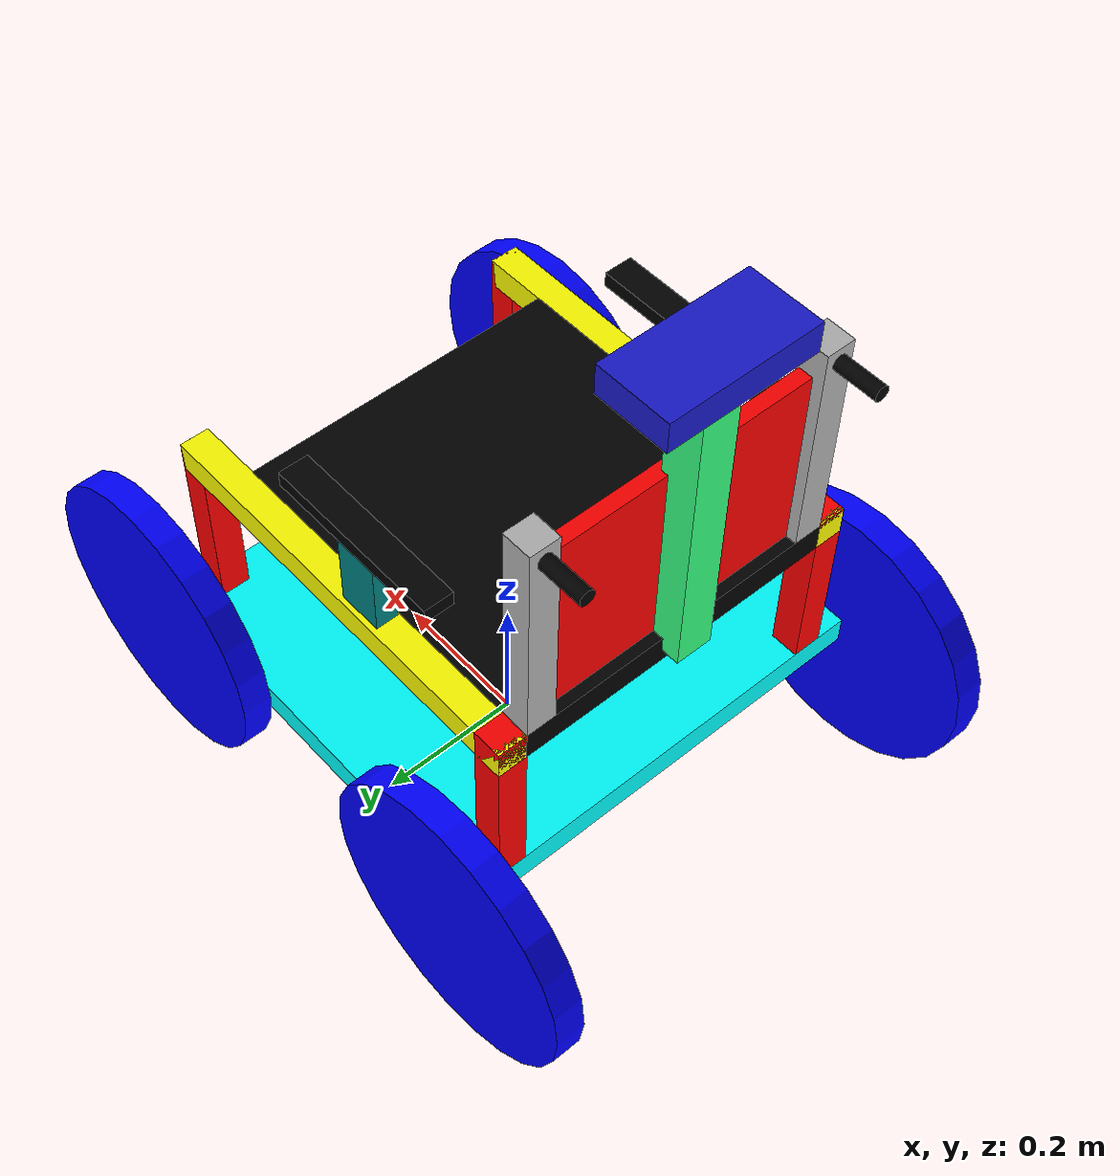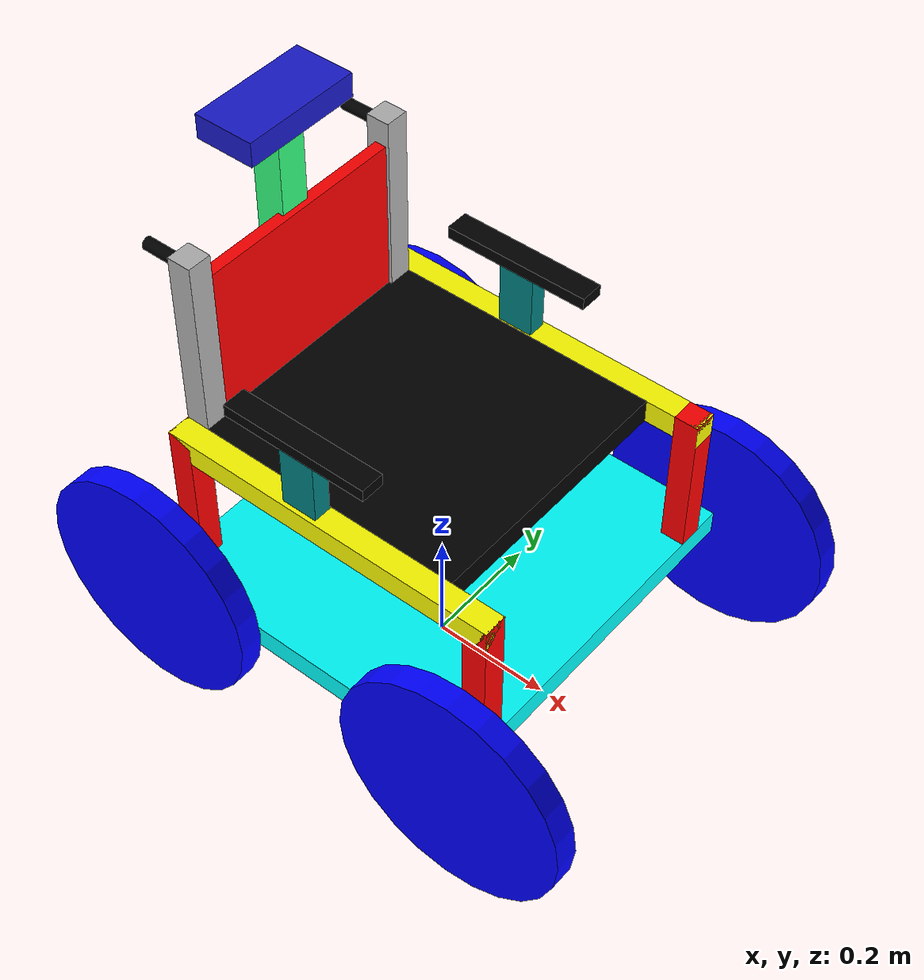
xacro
<?xml version="1.0"?>
<robot xmlns:xacro="http://www.ros.org/wiki/xacro" name="rover">

    <link name="base_link">

        <visual name="">
            <origin xyz="0.0 0.0 0.0" rpy="0.0 0.0 0.0"/>
            <geometry>
                <box size="0.0 0.0 0.0"/>
            </geometry>
            <material name="">
                <color rgba="0.0 1.0 1.0 1.0"/>
                <texture filename=""/>
            </material>
        </visual>

    </link>

    <link name="base_uplayer_link">
        <inertial>
            <origin xyz="0.0 0.0 0.0" rpy="0.0 0.0 0.0"/>
            <mass value="1.0"/>
            <inertia ixx="0.0" ixy="0.0" ixz="0.0" iyy="0.0" iyz="0.0" izz="0.0"/>
        </inertial>
        <visual name="">
            <origin xyz="0.0 0.0 0.0" rpy="0.0 0.0 0.0"/>
            <geometry>
                <box size="0.61 0.58 0.04"/>
            </geometry>
            <material name="">
                <color rgba="0.0 1.0 1.0 1.0"/>
                <texture filename=""/>
            </material>
        </visual>
        <collision>
            <origin xyz="0.0 0.0 0.0" rpy="0.0 0.0 0.0"/>
            <geometry>
                <box size="0.61 0.58 0.04"/>
            </geometry>
        </collision>
    </link>
    <joint name="base_joint" type="fixed">
        <origin xyz="0.0 0.0 0.195" rpy="0.0 0.0 -1.57"/>   <!-- here can control height from z -->
        <parent link="base_link"/>
        <child link="base_uplayer_link"/>
        <!-- here if link can move here choose axis who move around -->
        <axis xyz="0.0 0.0 0.0"/>
    </joint>

    <!-- All Wheel links and joints -->
    <xacro:macro name="wheel" params="name x y">

        <link name="wheel_${name}_link">
        <inertial>
            <origin xyz="0.0 0.0 0.0" rpy="0.0 0.0 0.0"/>
            <mass value="0.5"/>
            <inertia ixx="0.0" ixy="0.0" ixz="0.0" iyy="0.0" iyz="0.0" izz="0.0"/>
        </inertial>
        <visual name="">
            <origin xyz="0.0 0.0 0.0" rpy="0.0 0.0 0.0"/>
            <geometry>
                <cylinder radius="0.195" length="0.04"/>
            </geometry>
            <material name="blue">
                <color rgba="0.0 0.0 1.0 1.0"/>
            </material>
        </visual>
        <collision>
            <origin xyz="0.0 0.0 0.0" rpy="0.0 0.0 0.0"/>
            <geometry>
               <cylinder radius="0.195" length="0.04"/>
            </geometry>
        </collision>
        </link>

        <joint name="wheel_${name}_joint" type="continuous">
            <origin xyz="${x} ${y} 0.0" rpy="0.0 1.57 0.0"/>
            <parent link="base_uplayer_link"/>
            <child link="wheel_${name}_link"/>
            <axis xyz="0.0 0.0 1.0"/>
        </joint>

    </xacro:macro>

    <!-- Back Left wheel create  using xacro macros-->
    <xacro:wheel name="back_left" x="-0.325" y="-0.29" />
    <!-- Back Right wheel create  using xacro macros-->
    <xacro:wheel name="back_right" x="0.325" y="-0.29" />
    <!-- Front Left wheel create  using xacro macros-->
    <xacro:wheel name="front_left" x="-0.325 " y="0.29" />
    <!-- Front Right wheel create  using xacro macros-->
    <xacro:wheel name="front_right" x="0.325 " y="0.29" />

    <!-- All column links and joints -->
    <xacro:macro name="column" params="name x y">

        <link name="column_${name}_link">
            <inertial>
                <origin xyz="0.0 0.0 0.0" rpy="0.0 0.0 0.0"/>
                <mass value="0.02"/>
                <inertia ixx="0.0" ixy="0.0" ixz="0.0" iyy="0.0" iyz="0.0" izz="0.0"/>
            </inertial>
            <visual name="">
                <origin xyz="0.0 0.0 0.0" rpy="0.0 0.0 0.0"/>
                <geometry>
                    <box size="0.04 0.04 0.25"/>
                </geometry>
                <material name="">
                    <color rgba="1.0 0.0 0.0 1.0"/>
                    <texture filename=""/>
                </material>
            </visual>
            <collision>
                <origin xyz="0.0 0.0 0.0" rpy="0.0 0.0 0.0"/>
                <geometry>
                    <box size="0.04 0.04 0.25"/>
                </geometry>
            </collision>
        </link>
        <joint name="column_${name}_joint" type="fixed">
        <!-- here make  x = 0.28 instead of x=0.285 to make column not touch wheel -->
            <origin xyz="${x} ${y} 0.145" rpy="0.0 0.0 0.0"/>
            <parent link="base_uplayer_link"/>
            <child link="column_${name}_link"/>
            <axis xyz="0.0 0.0 0.0"/>
        </joint>

    </xacro:macro>

    <!-- Back Left column create  using xacro macros-->
    <xacro:column name="back_left" x="-0.242" y="-0.27" />
    <!-- Back Right column create  using xacro macros-->
    <xacro:column name="back_right" x="0.242" y="-0.27" />
    <!-- Front Left column create  using xacro macros-->
    <xacro:column name="front_left" x="-0.242" y="0.27" />
    <!-- Front Right column create  using xacro macros-->
    <xacro:column name="front_right" x="0.242" y="0.27" />

    <!-- All Parallel column link and joint -->

    <xacro:macro name="parallelColumn" params="name x">

        <link name="conect_2_${name}_link">
            <inertial>
                <origin xyz="0.0 0.0 0.0" rpy="0.0 0.0 0.0"/>
                <mass value="0.02"/>
                <inertia ixx="0.0" ixy="0.0" ixz="0.0" iyy="0.0" iyz="0.0" izz="0.0"/>
            </inertial>
            <visual name="">
                <origin xyz="0.0 0.0 0.0" rpy="0.0 0.0 0.0"/>
                <geometry>
                    <box size="0.04 0.58 0.04"/>
                </geometry>
                <material name="">
                    <color rgba="1.0 1.0 0.0 1.0"/>
                    <texture filename=""/>
                </material>
            </visual>
            <collision>
                <origin xyz="0.0 0.0 0.0" rpy="0.0 0.0 0.0"/>
                <geometry>
                    <box size="0.04 0.58 0.04"/>
                </geometry>
            </collision>
        </link>
        <joint name="conect_2_${name}_joint" type="fixed">
            <origin xyz=" ${x} 0.0 0.25" rpy="0.0 0.0 0.0"/>
            <parent link="base_uplayer_link"/>
            <child link="conect_2_${name}_link"/>
            <axis xyz="0.0 0.0 0.0"/>
        </joint>
    </xacro:macro>
    <!-- left parallel column create using macros -->
    <xacro:parallelColumn name="left_columns" x="-0.242" />
    <!-- right parallel column create using macros -->
    <xacro:parallelColumn name="right_columns" x="0.242" />

    <!-- create seat link and joint  -->
    <link name="seat_link">
        <inertial>
            <origin xyz="0.0 0.0 0.0" rpy="0.0 0.0 0.0"/>
            <mass value="1.0"/>
            <inertia ixx="0.0" ixy="0.0" ixz="0.0" iyy="0.0" iyz="0.0" izz="0.0"/>
        </inertial>
        <visual name="">
            <origin xyz="0.0 0.0 0.0" rpy="0.0 0.0 0.0"/>
            <geometry>
                <box size="0.445 0.49 0.04"/>
            </geometry>
            <material name="">
                <color rgba="0.0 0.0 0.0 1.0"/>
                <texture filename=""/>
            </material>
        </visual>
        <collision>
            <origin xyz="0.0 0.0 0.0" rpy="0.0 0.0 0.0"/>
            <geometry>
                <box size="0.445 0.49 0.04"/>
            </geometry>
        </collision>
    </link>
    <joint name="seat_joint" type="fixed">
        <origin xyz="0.0 -0.045 0.25" rpy="0.0 0.0 0.0"/>
        <parent link="base_uplayer_link"/>
        <child link="seat_link"/>
        <axis xyz="0.0 0.0 0.0"/>
    </joint>

    <!-- All vertical column for stand  link and joint -->
    <xacro:macro name="carriage_stand" params="name x">

        <link name="carriage_stand_${name}_link">
            <inertial>
                <origin xyz="0.0 0.0 0.0" rpy="0.0 0.0 0.0"/>
                <mass value="0.02"/>
                <inertia ixx="0.0" ixy="0.0" ixz="0.0" iyy="0.0" iyz="0.0" izz="0.0"/>
            </inertial>
            <visual name="">
                <origin xyz="0.0 0.0 0.0" rpy="0.0 0.0 0.0"/>
                <geometry>
                    <box size="0.03 0.06 0.125"/>
                </geometry>
                <material name="">
                    <color rgba="0.0 0.5 0.5 1.0"/>
                    <texture filename=""/>
                </material>
            </visual>
            <collision>
                <origin xyz="0.0 0.0 0.0" rpy="0.0 0.0 0.0"/>
                <geometry>
                   <box size="0.03 0.06 0.125"/>
                </geometry>
            </collision>
        </link>
        <joint name="carriage_stand_${name}_joint" type="fixed">
            <origin xyz="${x} 0.0 0.0825" rpy="0.0 0.0 0.0"/>
            <parent link="seat_link"/>
            <child link="carriage_stand_${name}_link"/>
            <axis xyz="0.0 0.0 0.0"/>
        </joint>

    </xacro:macro>
    <!-- create left carriage_stand using macro -->
    <xacro:carriage_stand name="left" x="-0.24"/>
    <!-- create right carriage_stand using macro -->
    <xacro:carriage_stand name="right" x="0.24"/>

    <!-- All Parallel column for stand  link and joint -->
    <xacro:macro name="parallel_stand" params="name x">

        <link name="parallel_stand_${name}_link">
            <inertial>
                <origin xyz="0.0 0.0 0.0" rpy="0.0 0.0 0.0"/>
                <mass value="0.02"/>
                <inertia ixx="0.0" ixy="0.0" ixz="0.0" iyy="0.0" iyz="0.0" izz="0.0"/>
            </inertial>
            <visual name="">
                <origin xyz="0.0 0.0 0.0" rpy="0.0 0.0 0.0"/>
                <geometry>
                    <box size="0.04 0.25 0.02"/>
                </geometry>
                <material name="">
                    <color rgba="0.0 0.0 0.0 1.0"/>
                    <texture filename=""/>
                </material>
            </visual>
            <collision>
                <origin xyz="0.0 0.0 0.0" rpy="0.0 0.0 0.0"/>
                <geometry>
                   <box size="0.04 0.25 0.02"/>
                </geometry>
            </collision>
        </link>
        <joint name="parallel_stand_${name}_joint" type="fixed">
            <origin xyz="${x} 0.0 0.14" rpy="0.0 0.0 0.0"/>
            <parent link="seat_link"/>
            <child link="parallel_stand_${name}_link"/>
            <axis xyz="0.0 0.0 0.0"/>
        </joint>

    </xacro:macro>
    <!-- create left parallel stand (actaully stand ) using macros -->
    <xacro:parallel_stand name="left" x="-0.24"/>
    <!-- create right parallel stand (actaully stand ) using macros -->
    <xacro:parallel_stand name="right" x="0.24"/>

    <!-- All column for Back seat link and joint -->
    <xacro:macro name="column_back" params="name x">

        <link name="column_back_seat_${name}_link">
            <inertial>
                <origin xyz="0.0 0.0 0.0" rpy="0.0 0.0 0.0"/>
                <mass value="0.02"/>
                <inertia ixx="0.0" ixy="0.0" ixz="0.0" iyy="0.0" iyz="0.0" izz="0.0"/>
            </inertial>
            <visual name="">
                <origin xyz="0.0 0.0 0.0" rpy="0.0 0.0 0.0"/>
                <geometry>
                    <box size="0.04 0.04 0.3"/>
                </geometry>
                <material name="">
                    <color rgba="0.7 0.7 0.7 1.0"/>
                    <texture filename=""/>
                </material>
            </visual>
            <collision>
                <origin xyz="0.0 0.0 0.0" rpy="0.0 0.0 0.0"/>
                <geometry>
                    <box size="0.04 0.04 0.3"/>
                </geometry>
            </collision>
        </link>
        <joint name="column_back_seat_${name}_joint" type="fixed">
            <origin xyz="${x} -0.225 0.17" rpy="0.0 0.0 0.0"/>
            <parent link="seat_link"/>
            <child link="column_back_seat_${name}_link"/>
            <axis xyz="0.0 0.0 0.0"/>
        </joint>
    </xacro:macro>
    <!-- create left column that will used to make back seat using macros -->
    <xacro:column_back name="left" x="-0.202 "/>
    <!-- create right column that will used to make back seat using macros -->
    <xacro:column_back name="right" x="0.202 "/>

    <!-- create back link and jont -->
    <link name="back_link">
        <inertial>
            <origin xyz="0.0 0.0 0.0" rpy="0.0 0.0 0.0"/>
            <mass value="1.0"/>
            <inertia ixx="0.0" ixy="0.0" ixz="0.0" iyy="0.0" iyz="0.0" izz="0.0"/>
        </inertial>
        <visual name="">
            <origin xyz="0.0 0.0 0.0" rpy="0.0 0.0 0.0"/>
            <geometry>
                <box size="0.365 0.26 0.02"/>
            </geometry>
            <material name="">
                <color rgba="1.0 0.0 0.0 1.0"/>
                <texture filename=""/>
            </material>
        </visual>
        <collision>
            <origin xyz="0.0 0.0 0.0" rpy="0.0 0.0 0.0"/>
            <geometry>
                <box size="0.365 0.26 0.02"/>
            </geometry>
        </collision>
    </link>
    <joint name="back_joint" type="fixed">
        <origin xyz="0.0 -0.22 0.148" rpy="1.57 0.0 0.0"/>
        <parent link="seat_link"/>
        <child link="back_link"/>
        <axis xyz="0.0 0.0 0.0"/>
        <limit lower="0.0" upper="0.0" effort="0.0" velocity="0.0"/>
    </joint>

    <!-- All handle to move chair link and joint -->
    <xacro:macro name="handle_chair" params="name parent_link ">

        <link name="handle_${name}_link">
            <inertial>
                <origin xyz="0.0 0.0 0.0" rpy="0.0 0.0 0.0"/>
                <mass value="0.02"/>
                <inertia ixx="0.0" ixy="0.0" ixz="0.0" iyy="0.0" iyz="0.0" izz="0.0"/>
            </inertial>
            <visual name="">
                <origin xyz="0.0 0.0 0.0" rpy="0.0 0.0 0.0"/>
                <geometry>
                    <cylinder radius="0.01" length="0.08"/>
                </geometry>
                <material name="">
                    <color rgba="0.0 0.0 0.0 1.0"/>
                    <texture filename=""/>
                </material>
            </visual>
            <collision>
                <origin xyz="0.0 0.0 0.0" rpy="0.0 0.0 0.0"/>
                <geometry>
                    <cylinder radius="0.01" length="0.08"/>
                </geometry>
            </collision>
        </link>
        <joint name="handle_${name}_joint" type="fixed">
            <origin xyz="0.0 -0.04 0.13" rpy="1.57 0.0 0.0"/>
            <parent link="${parent_link}"/>
            <child link="handle_${name}_link"/>
            <axis xyz="0.0 0.0 0.0"/>
        </joint>

    </xacro:macro>

    <xacro:handle_chair name="left" parent_link="column_back_seat_left_link" />
    <xacro:handle_chair name="right" parent_link="column_back_seat_right_link" />

    <!-- create stand for camera link and joint -->
    <link name="camera_stand_link">
        <inertial>
            <origin xyz="0.0 0.0 0.0" rpy="0.0 0.0 0.0"/>
            <mass value="1.0"/>
            <inertia ixx="0.0" ixy="0.0" ixz="0.0" iyy="0.0" iyz="0.0" izz="0.0"/>
        </inertial>
        <visual name="">
            <origin xyz="0.0 0.0 0.0" rpy="0.0 0.0 0.0"/>
            <geometry>
                <box size="0.05 0.05 0.42 "/>
            </geometry>
            <material name="">
                <color rgba="0.2 1.0 0.5 1.0"/>
                <texture filename=""/>
            </material>
        </visual>
        <collision>
            <origin xyz="0.0 0.0 0.0" rpy="0.0 0.0 0.0"/>
            <geometry>
                <box size="0.05 0.05 0.29"/>
            </geometry>
        </collision>
    </link>
    <joint name="camera_stand_joint" type="fixed">
        <origin xyz="0.0 -0.245 0.21" rpy="0.0 0.0 0.0"/>
        <parent link="seat_link"/>
        <child link="camera_stand_link"/>
        <axis xyz="0.0 0.0 0.0"/>
    </joint>

    <!-- create camera link and joint -->
    <link name="camera_link">
        <inertial>
            <origin xyz="0.0 0.0 0.0" rpy="0.0 0.0 0.0"/>
            <mass value="1.0"/>
            <inertia ixx="0.0" ixy="0.0" ixz="0.0" iyy="0.0" iyz="0.0" izz="0.0"/>
        </inertial>
        <visual name="">
            <origin xyz="0.0 0.0 0.0" rpy="0.0 0.0 0.0"/>
            <geometry>
                <box size="0.1 0.2  0.04 "/>
            </geometry>
            <material name="">
                <color rgba="0.1 0.1 0.8 1.0"/>
                <texture filename=""/>
            </material>
        </visual>
        <collision>
            <origin xyz="0.0 0.0 0.0" rpy="0.0 0.0 0.0"/>
            <geometry>
                <box size="0.15 0.05 0.29"/>
            </geometry>
        </collision>
    </link>
    <joint name="camera_joint" type="fixed">
        <parent link="camera_stand_link"/>
        <origin xyz="0.0 0.0 0.23" rpy="0.0 0.0 1.57"/>
        <child link="camera_link"/>
        <axis xyz="0.0 0.0 0.0"/>
    </joint>

</robot>
